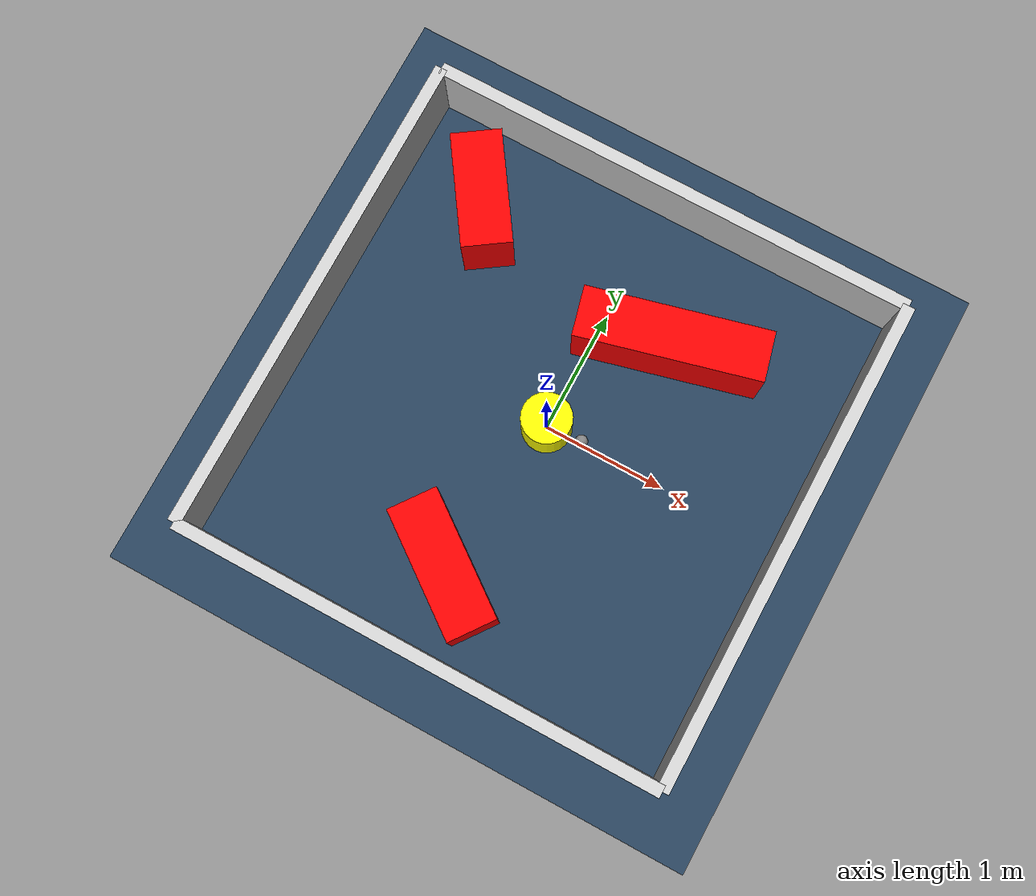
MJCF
<?xml version="1.0" ?>
<mujoco model="generated_environment">
  <option timestep="0.01" integrator="RK4" cone="elliptic"/>
  <default>
    <geom density="1"/>
  </default>
  <asset>
    <texture builtin="gradient" height="3072" rgb1="0.3 0.5 0.7" rgb2="0 0 0" type="skybox" width="512"/>
    <texture builtin="checker" height="300" mark="edge" markrgb="0.8 0.8 0.8" name="groundplane" rgb1="0.2 0.3 0.4" rgb2="0.1 0.2 0.3" type="2d" width="300"/>
    <material name="groundplane" reflectance="0.2" texrepeat="5 5" texture="groundplane" texuniform="true"/>
    <material name="robot" rgba="0.0 1.0 0.0 1"/>
  </asset>
  <worldbody>
    <light dir="0 0 -1" directional="true" pos="0 0 1.5"/>
    <geom condim="4" friction="1.0 0.005 0.001" material="groundplane" name="floor" size="0 0 0.05" type="plane"/>
    <body name="walls">
      <geom name="wall_1" condim="4" pos="-2.0 0.0 0.3" rgba="0.800000011920929 0.800000011920929 0.800000011920929 1.0" size="0.05 2.0 0.3" type="box"/>
      <geom name="wall_2" condim="4" pos="2.0 0.0 0.3" rgba="0.800000011920929 0.800000011920929 0.800000011920929 1.0" size="0.05 2.0 0.3" type="box"/>
      <geom name="wall_3" condim="4" pos="0.0 -2.0 0.3" rgba="0.800000011920929 0.800000011920929 0.800000011920929 1.0" size="2.0 0.05 0.3" type="box"/>
      <geom name="wall_4" condim="4" pos="0.0 2.0 0.3" rgba="0.800000011920929 0.800000011920929 0.800000011920929 1.0" size="2.0 0.05 0.3" type="box"/>
    </body>
    <body name="robot">
      <joint name="joint_x" type="slide" pos="0 0 0" axis="1 0 0"/>
      <joint name="joint_y" type="slide" pos="0 0 0" axis="0 1 0"/>
      <geom name="robot" type="sphere" pos="0.3 0.0 0.2" size="0.05" mass="5." friction="1.0 0.005 0.0001" condim="4" rgba="0.5 0.5 0.5 1.0"/>
      <site name="sensor_ball"/>
    </body>
    <body name="obstacle_movable_1">
      <geom name="obstacle_movable_1" condim="4" pos="0.0 0.0 0.2" euler="0 0 0.0" friction="1.0 0.005 0.001" rgba="1.0 1.0 0.0 1.0" size="0.2 0.2 0.0" type="cylinder" mass="0.1"/>
      <joint type="free"/>
    </body>
    <body name="obstacle_2_static">
      <geom name="obstacle_2_static" condim="4" pos="-1.2638110832473393 1.298546503912427 0.3" euler="0 0 124.14237797531406" friction="1.0 0.005 0.001" rgba="1 0 0 1" size="0.45464016474508817 0.2 0.3" type="box"/>
    </body>
    <body name="obstacle_3_static">
      <geom name="obstacle_3_static" condim="4" pos="0.5477607113137775 0.9797675502676151 0.3" euler="0 0 14.182293300986721" friction="1.0 0.005 0.001" rgba="1 0 0 1" size="0.7367089199366688 0.2 0.3" type="box"/>
    </body>
    <body name="obstacle_4_static">
      <geom name="obstacle_4_static" condim="4" pos="-0.140955195827986 -1.3390195309199793 0.3" euler="0 0 323.4582541627732" friction="1.0 0.005 0.001" rgba="1 0 0 1" size="0.5304139816169368 0.2 0.3" type="box"/>
    </body>
  </worldbody>
  <actuator>
    <motor name="actuator_x" joint="joint_x" gear="1" ctrlrange="-1 1"/>
    <motor name="actuator_y" joint="joint_y" gear="1" ctrlrange="-1 1"/>
  </actuator>
</mujoco>
